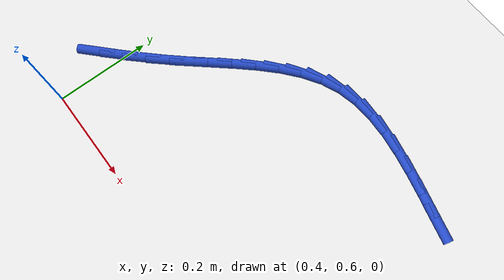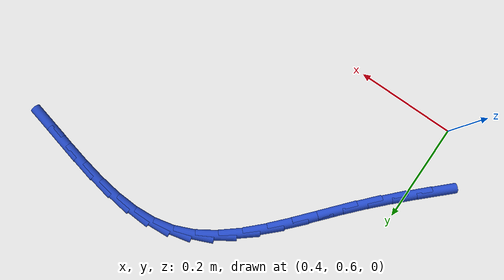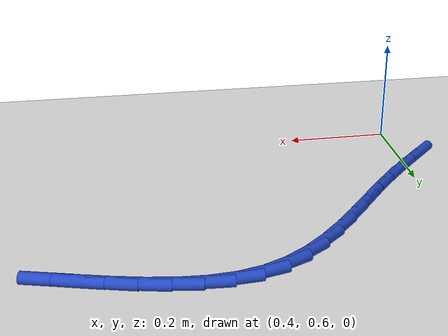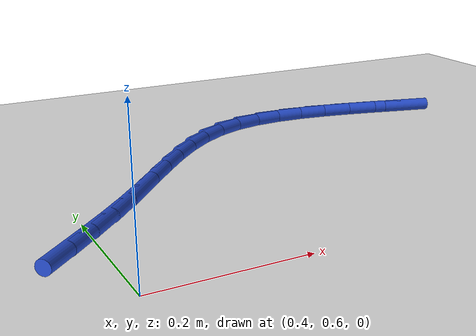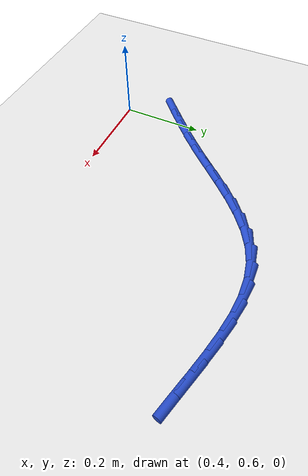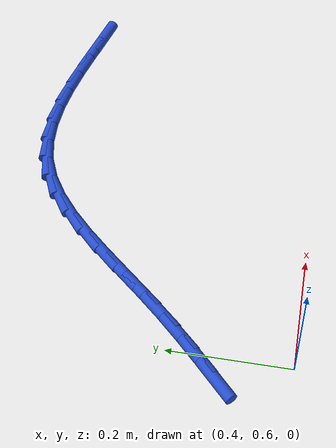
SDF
<sdf version="1.6">
 <world name="default">
  <model name="ground_plane">
   <static>1</static>
   <link name="link">
    <collision name="collision">
     <geometry><plane><normal>0 0 1</normal><size>100 100</size></plane></geometry>
     <surface><friction><ode><mu>100</mu><mu2>50</mu2></ode></friction></surface>
    </collision>
    <visual name="visual">
     <cast_shadows>0</cast_shadows>
     <geometry><plane><normal>0 0 1</normal><size>100 100</size></plane></geometry>
     <material>
      <script><uri>file://media/materials/scripts/gazebo.material</uri><name>Gazebo/WhiteGlow</name></script>
     </material>
    </visual>
   </link>
  </model>
  <model name="line">
   <link name="link_18">
    <pose>0.357532206814077 0.7146559319457862 0.01 0 1.57 0.7610458376176564</pose>
    <collision name="collision">
     <geometry><cylinder><radius>0.01</radius><length>0.08</length></cylinder></geometry>
    </collision>
    <visual name="visual">
     <material>
      <script><name>Gazebo/Blue</name><uri>file://media/materials/scripts/gazebo.material</uri></script>
     </material>
     <geometry><cylinder><radius>0.01</radius><length>0.08</length></cylinder></geometry>
    </visual>
   </link>
   <link name="link_19">
    <pose>0.39235891766839937 0.7478264253189639 0.01 0 1.57 0.7769588065728732</pose>
    <collision name="collision">
     <geometry><cylinder><radius>0.01</radius><length>0.08</length></cylinder></geometry>
    </collision>
    <visual name="visual">
     <material>
      <script><name>Gazebo/Blue</name><uri>file://media/materials/scripts/gazebo.material</uri></script>
     </material>
     <geometry><cylinder><radius>0.01</radius><length>0.08</length></cylinder></geometry>
    </visual>
   </link>
   <link name="link_20">
    <pose>0.42702289312094177 0.7819102002009886 0.01 0 1.57 0.8012282717308266</pose>
    <collision name="collision">
     <geometry><cylinder><radius>0.01</radius><length>0.08</length></cylinder></geometry>
    </collision>
    <visual name="visual">
     <material>
      <script><name>Gazebo/Blue</name><uri>file://media/materials/scripts/gazebo.material</uri></script>
     </material>
     <geometry><cylinder><radius>0.01</radius><length>0.08</length></cylinder></geometry>
    </visual>
   </link>
   <link name="link_21">
    <pose>0.4612198767032226 0.8172073757523164 0.01 0 1.57 0.832322792454036</pose>
    <collision name="collision">
     <geometry><cylinder><radius>0.01</radius><length>0.08</length></cylinder></geometry>
    </collision>
    <visual name="visual">
     <material>
      <script><name>Gazebo/Blue</name><uri>file://media/materials/scripts/gazebo.material</uri></script>
     </material>
     <geometry><cylinder><radius>0.01</radius><length>0.08</length></cylinder></geometry>
    </visual>
   </link>
   <link name="link_22">
    <pose>0.4946744441863599 0.8539587511898754 0.01 0 1.57 0.8526725860245864</pose>
    <collision name="collision">
     <geometry><cylinder><radius>0.01</radius><length>0.08</length></cylinder></geometry>
    </collision>
    <visual name="visual">
     <material>
      <script><name>Gazebo/Blue</name><uri>file://media/materials/scripts/gazebo.material</uri></script>
     </material>
     <geometry><cylinder><radius>0.01</radius><length>0.08</length></cylinder></geometry>
    </visual>
   </link>
   <link name="link_23">
    <pose>0.5275243492765683 0.8915550463709637 0.01 0 1.57 0.8497582648176932</pose>
    <collision name="collision">
     <geometry><cylinder><radius>0.01</radius><length>0.08</length></cylinder></geometry>
    </collision>
    <visual name="visual">
     <material>
      <script><name>Gazebo/Blue</name><uri>file://media/materials/scripts/gazebo.material</uri></script>
     </material>
     <geometry><cylinder><radius>0.01</radius><length>0.08</length></cylinder></geometry>
    </visual>
   </link>
   <link name="link_24">
    <pose>0.5602163338512135 0.9287512635979086 0.01 0 1.57 0.8225589992135482</pose>
    <collision name="collision">
     <geometry><cylinder><radius>0.01</radius><length>0.08</length></cylinder></geometry>
    </collision>
    <visual name="visual">
     <material>
      <script><name>Gazebo/Blue</name><uri>file://media/materials/scripts/gazebo.material</uri></script>
     </material>
     <geometry><cylinder><radius>0.01</radius><length>0.08</length></cylinder></geometry>
    </visual>
   </link>
   <link name="link_25">
    <pose>0.5932045809711561 0.9642870955546824 0.01 0 1.57 0.7684670238173941</pose>
    <collision name="collision">
     <geometry><cylinder><radius>0.01</radius><length>0.08</length></cylinder></geometry>
    </collision>
    <visual name="visual">
     <material>
      <script><name>Gazebo/Blue</name><uri>file://media/materials/scripts/gazebo.material</uri></script>
     </material>
     <geometry><cylinder><radius>0.01</radius><length>0.08</length></cylinder></geometry>
    </visual>
   </link>
   <link name="link_26">
    <pose>0.6269432736972561 0.9969022349252559 0.01 0 1.57 0.6830520195893657</pose>
    <collision name="collision">
     <geometry><cylinder><radius>0.01</radius><length>0.08</length></cylinder></geometry>
    </collision>
    <visual name="visual">
     <material>
      <script><name>Gazebo/Blue</name><uri>file://media/materials/scripts/gazebo.material</uri></script>
     </material>
     <geometry><cylinder><radius>0.01</radius><length>0.08</length></cylinder></geometry>
    </visual>
   </link>
   <link name="link_27">
    <pose>0.6618865950903736 1.0253363743936013 0.01 0 1.57 0.5608848319711809</pose>
    <collision name="collision">
     <geometry><cylinder><radius>0.01</radius><length>0.08</length></cylinder></geometry>
    </collision>
    <visual name="visual">
     <material>
      <script><name>Gazebo/Blue</name><uri>file://media/materials/scripts/gazebo.material</uri></script>
     </material>
     <geometry><cylinder><radius>0.01</radius><length>0.08</length></cylinder></geometry>
    </visual>
   </link>
   <link name="link_28">
    <pose>0.6984887282113688 1.04832920664369 0.01 0 1.57 0.3983347546345636</pose>
    <collision name="collision">
     <geometry><cylinder><radius>0.01</radius><length>0.08</length></cylinder></geometry>
    </collision>
    <visual name="visual">
     <material>
      <script><name>Gazebo/Blue</name><uri>file://media/materials/scripts/gazebo.material</uri></script>
     </material>
     <geometry><cylinder><radius>0.01</radius><length>0.08</length></cylinder></geometry>
    </visual>
   </link>
   <link name="link_29">
    <pose>0.7372034574226284 1.0646215913000199 0.01 0 1.57 0.21392442425331024</pose>
    <collision name="collision">
     <geometry><cylinder><radius>0.01</radius><length>0.08</length></cylinder></geometry>
    </collision>
    <visual name="visual">
     <material>
      <script><name>Gazebo/Blue</name><uri>file://media/materials/scripts/gazebo.material</uri></script>
     </material>
     <geometry><cylinder><radius>0.01</radius><length>0.08</length></cylinder></geometry>
    </visual>
   </link>
   <link name="link_30">
    <pose>0.7782824544752611 1.073545946301163 0.01 0 1.57 0.056478903532812944</pose>
    <collision name="collision">
     <geometry><cylinder><radius>0.01</radius><length>0.08</length></cylinder></geometry>
    </collision>
    <visual name="visual">
     <material>
      <script><name>Gazebo/Blue</name><uri>file://media/materials/scripts/gazebo.material</uri></script>
     </material>
     <geometry><cylinder><radius>0.01</radius><length>0.08</length></cylinder></geometry>
    </visual>
   </link>
   <link name="link_31">
    <pose>0.8214472178749941 1.075986440311302 0.01 0 1.57 -0.06469218494856696</pose>
    <collision name="collision">
     <geometry><cylinder><radius>0.01</radius><length>0.08</length></cylinder></geometry>
    </collision>
    <visual name="visual">
     <material>
      <script><name>Gazebo/Blue</name><uri>file://media/materials/scripts/gazebo.material</uri></script>
     </material>
     <geometry><cylinder><radius>0.01</radius><length>0.08</length></cylinder></geometry>
    </visual>
   </link>
   <link name="link_32">
    <pose>0.8663333669465786 1.0730785996075394 0.01 0 1.57 -0.15278278693164793</pose>
    <collision name="collision">
     <geometry><cylinder><radius>0.01</radius><length>0.08</length></cylinder></geometry>
    </collision>
    <visual name="visual">
     <material>
      <script><name>Gazebo/Blue</name><uri>file://media/materials/scripts/gazebo.material</uri></script>
     </material>
     <geometry><cylinder><radius>0.01</radius><length>0.08</length></cylinder></geometry>
    </visual>
   </link>
   <link name="link_33">
    <pose>0.9125765210147673 1.0659579504669805 0.01 0 1.57 -0.2126307090838199</pose>
    <collision name="collision">
     <geometry><cylinder><radius>0.01</radius><length>0.08</length></cylinder></geometry>
    </collision>
    <visual name="visual">
     <material>
      <script><name>Gazebo/Blue</name><uri>file://media/materials/scripts/gazebo.material</uri></script>
     </material>
     <geometry><cylinder><radius>0.01</radius><length>0.08</length></cylinder></geometry>
    </visual>
   </link>
   <link name="link_34">
    <pose>0.9598122994043109 1.0557600191667267 0.01 0 1.57 -0.24839093432079754</pose>
    <collision name="collision">
     <geometry><cylinder><radius>0.01</radius><length>0.08</length></cylinder></geometry>
    </collision>
    <visual name="visual">
     <material>
      <script><name>Gazebo/Blue</name><uri>file://media/materials/scripts/gazebo.material</uri></script>
     </material>
     <geometry><cylinder><radius>0.01</radius><length>0.08</length></cylinder></geometry>
    </visual>
   </link>
   <link name="link_35">
    <pose>1.0076763214399618 1.043620331983883 0.01 0 1.57 -0.2627701634435653</pose>
    <collision name="collision">
     <geometry><cylinder><radius>0.01</radius><length>0.08</length></cylinder></geometry>
    </collision>
    <visual name="visual">
     <material>
      <script><name>Gazebo/Blue</name><uri>file://media/materials/scripts/gazebo.material</uri></script>
     </material>
     <geometry><cylinder><radius>0.01</radius><length>0.08</length></cylinder></geometry>
    </visual>
   </link>
   <link name="link_36">
    <pose>1.0558042064464714 1.0306744151955518 0.01 0 1.57 -0.2568921313939172</pose>
    <collision name="collision">
     <geometry><cylinder><radius>0.01</radius><length>0.08</length></cylinder></geometry>
    </collision>
    <visual name="visual">
     <material>
      <script><name>Gazebo/Blue</name><uri>file://media/materials/scripts/gazebo.material</uri></script>
     </material>
     <geometry><cylinder><radius>0.01</radius><length>0.08</length></cylinder></geometry>
    </visual>
   </link>
  </model>
 </world>
</sdf>
